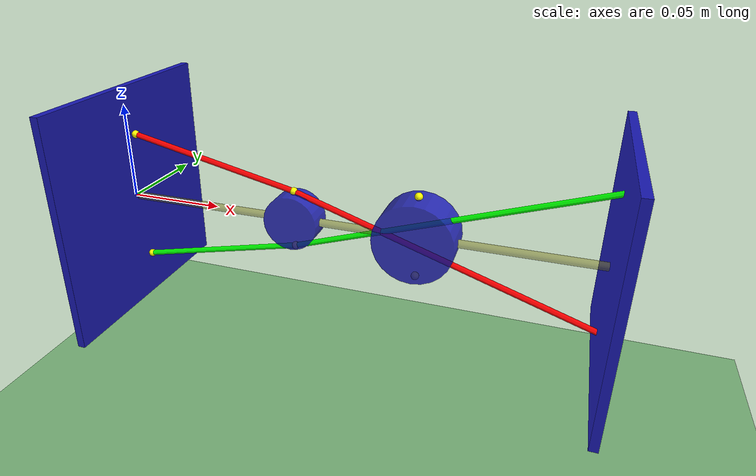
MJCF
<mujoco model="RR_Mechanism">

    <option gravity="0 0 0" integrator="Euler"/>

    <statistic center="0 0 0" extent="0.2"/>

    <visual>
        <rgba haze=".8 .3 .3 1"/>
    </visual>

    <default>
        <joint axis="0 1 0" damping="0.000005"/>
        <geom type="capsule"/>
    </default>

    <asset>
        <texture name="texplane" type="2d" builtin="checker"
                 rgb1=".7 .7 .25" rgb2=".25 .7 .7"
                 width="512" height="512" mark="cross" markrgb=".8 .8 .8"/>
        <material name="matplane" reflectance="0" texture="texplane"
                  texrepeat="1 1" texuniform="true"/>
    </asset>

    <worldbody>

        <light pos="0 0 0.25" />
        <light pos="0 0 3" dir="0 0 -1" directional="false" />

        <geom name="floor" pos="0 0 -0.14" size="0 0 1"
              type="plane" material="matplane" conaffinity="15" condim="3"/>

        <!-- LEFT SIDE -->
        <body pos="0 0 0">

            <geom name="left_bound" type="box" size="0.002 0.06 0.06"
                  rgba="0.1 0.1 0.7 1" pos="0 0 0"/>

            <geom fromto="0 0 0 0.094 0 0"
                  rgba=".5 .5 .1 .5" size=".002"
                  contype="0" conaffinity="0"/>

            <site name="s1" pos="0.005 0 0.035" size=".002" rgba="1 1 0 1"/>
            <site name="s2" pos="0.005 0 -0.035" size=".002" rgba="1 1 0 1"/>

            <!-- FIRST JOINT (ELBOW) -->
            <body pos="0.094 0 0">

                <joint name="elbow"/>

                <geom fromto="0 0 0 0.063 0 0"
                      rgba=".5 .5 .1 .5" size=".002"/>

                <geom name="Pulley" type="cylinder"
                      fromto="0 .007 0 0 -.007 0"
                      size=".014" rgba=".1 .1 .75 .85"/>

                <site name="s3" pos="0 0 0.015" size=".002" rgba="1 1 0 1"/>
                <site name="s4" pos="0 0 -0.015" size=".002" rgba="1 1 0 1"/>

                <!-- SECOND JOINT (WRIST) -->
                <body pos="0.063 0 0">

                    <joint name="wrist"/>

                    <geom fromto="0 0 0 0.088 0 0"
                          rgba=".5 .5 .1 .5" size=".002"/>

                    <geom name="Pulley2" type="cylinder"
                          fromto="0 .01 0 0 -.01 0"
                          size=".02" rgba=".1 .1 .75 .85"/>

                    <site name="s5" pos="0 0 0.021" size=".002" rgba="1 1 0 1"/>
                    <site name="s6" pos="0 0 -0.021" size=".002" rgba="1 1 0 1"/>
                    <site name="s7" pos="0.088 0 0.035" size=".002" rgba="1 1 0 1"/>
                    <site name="s8" pos="0.088 0 -0.035" size=".002" rgba="1 1 0 1"/>

                    <!-- RIGHT SIDE -->
                    <body>
                        <geom name="right_bound" type="box"
                              size="0.002 0.055 0.055"
                              rgba="0.1 0.1 0.7 1"
                              pos="0.088 0 0"/>
                    </body>

                </body>
            </body>
        </body>
    </worldbody>

    <!-- TENDONS -->
    <tendon>

        <!-- RED SPATIAL TENDON -->
        <spatial stiffness="10" rgba="1 0 0 1" width="0.0015">
            <site site="s1"/>
            <geom geom="Pulley" sidesite="s3"/>
            <site site="s3"/>
            <geom geom="Pulley2" sidesite="s6"/>
            <site site="s8"/>
        </spatial>

        <!-- GREEN SPATIAL TENDON -->
        <spatial stiffness="10" rgba="0 1 0 1" width="0.0015">
            <site site="s2"/>
            <geom geom="Pulley" sidesite="s4"/>
            <site site="s4"/>
            <geom geom="Pulley2" sidesite="s5"/>
            <site site="s7"/>
        </spatial>

    </tendon>

</mujoco>
